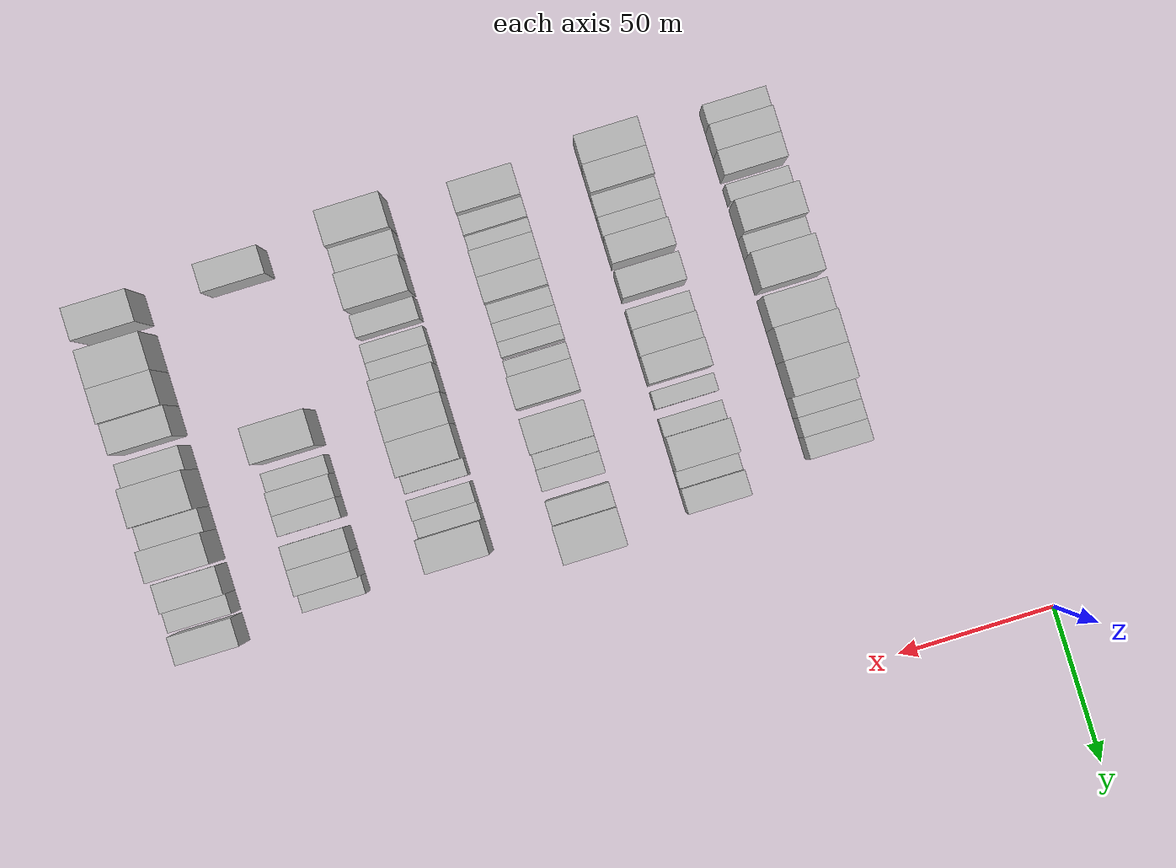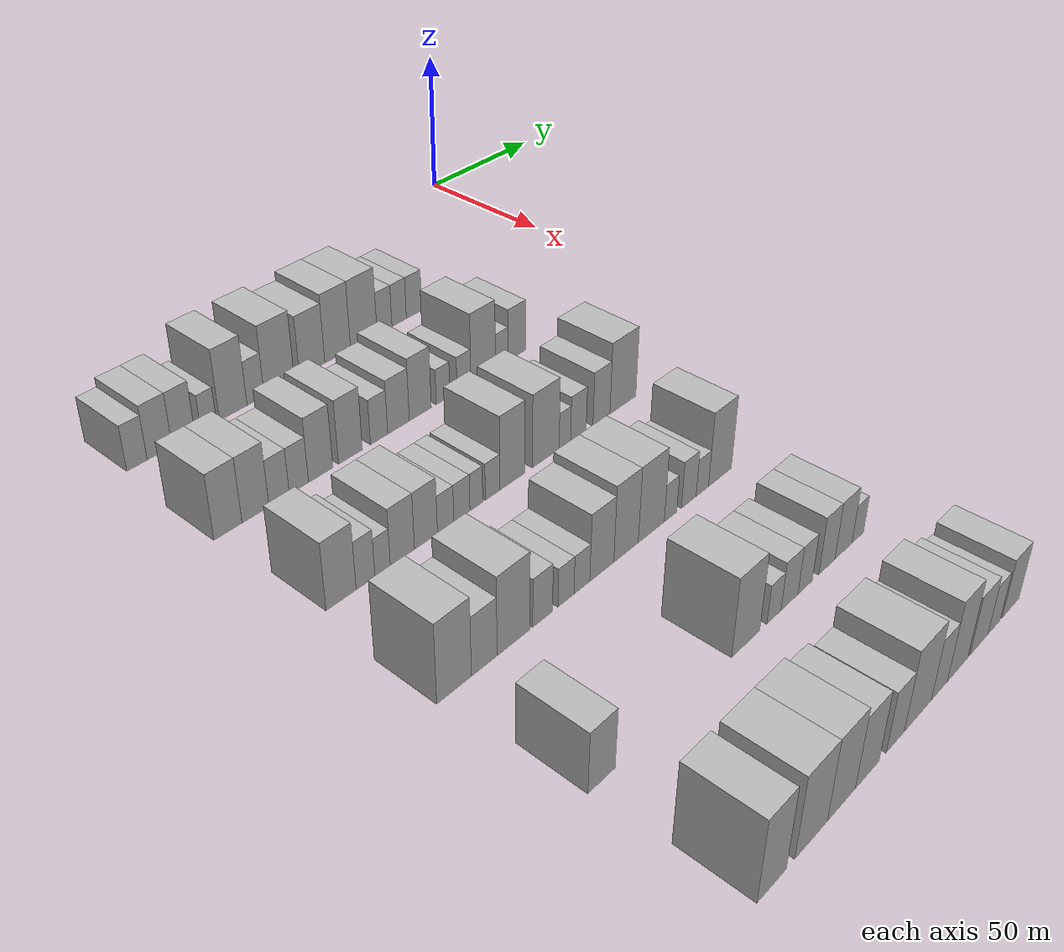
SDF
<sdf version="1.6">
 <world name="default">
  <model name="building_51">
   <static>1</static>
   <pose>50.0000 -174.0268 0 0.000000 0.000000 0.000000</pose>
   <link name="link">
    <pose>0 0 7.50 0 0 0</pose>
    <collision name="collision"><geometry><box><size>20.0000 6.5966 15.0000</size></box></geometry></collision>
    <visual name="visual">
     <cast_shadows>0</cast_shadows>
     <geometry><box><size>20.0000 6.5966 15.0000</size></box></geometry>
     <material>
      <script>
       <uri>model://HANNAS_wall/materials/scripts</uri>
       <uri>model://HANNAS_wall/materials/textures</uri>
       <name>vrc/HANNAS_wall</name>
      </script>
     </material>
    </visual>
   </link>
  </model>
  <model name="building_52">
   <static>1</static>
   <pose>50.0000 -166.6360 0 0.000000 0.000000 0.000000</pose>
   <link name="link">
    <pose>0 0 9.00 0 0 0</pose>
    <collision name="collision"><geometry><box><size>20.0000 8.1851 18.0000</size></box></geometry></collision>
    <visual name="visual">
     <cast_shadows>0</cast_shadows>
     <geometry><box><size>20.0000 8.1851 18.0000</size></box></geometry>
     <material>
      <script>
       <uri>model://HANNAS_wall/materials/scripts</uri>
       <uri>model://HANNAS_wall/materials/textures</uri>
       <name>vrc/HANNAS_wall</name>
      </script>
     </material>
    </visual>
   </link>
  </model>
  <model name="building_53">
   <static>1</static>
   <pose>50.0000 -158.6678 0 0.000000 0.000000 0.000000</pose>
   <link name="link">
    <pose>0 0 9.00 0 0 0</pose>
    <collision name="collision"><geometry><box><size>20.0000 7.7513 18.0000</size></box></geometry></collision>
    <visual name="visual">
     <cast_shadows>0</cast_shadows>
     <geometry><box><size>20.0000 7.7513 18.0000</size></box></geometry>
     <material>
      <script>
       <uri>model://HANNAS_wall/materials/scripts</uri>
       <uri>model://HANNAS_wall/materials/textures</uri>
       <name>vrc/HANNAS_wall</name>
      </script>
     </material>
    </visual>
   </link>
  </model>
  <model name="building_54">
   <static>1</static>
   <pose>50.0000 -150.0392 0 0.000000 0.000000 0.000000</pose>
   <link name="link">
    <pose>0 0 6.00 0 0 0</pose>
    <collision name="collision"><geometry><box><size>20.0000 5.5058 12.0000</size></box></geometry></collision>
    <visual name="visual">
     <cast_shadows>0</cast_shadows>
     <geometry><box><size>20.0000 5.5058 12.0000</size></box></geometry>
     <material>
      <script>
       <uri>model://HANNAS_wall/materials/scripts</uri>
       <uri>model://HANNAS_wall/materials/textures</uri>
       <name>vrc/HANNAS_wall</name>
      </script>
     </material>
    </visual>
   </link>
  </model>
  <model name="building_55">
   <static>1</static>
   <pose>50.0000 -141.3399 0 0.000000 0.000000 0.000000</pose>
   <link name="link">
    <pose>0 0 12.00 0 0 0</pose>
    <collision name="collision"><geometry><box><size>20.0000 9.8928 24.0000</size></box></geometry></collision>
    <visual name="visual">
     <cast_shadows>0</cast_shadows>
     <geometry><box><size>20.0000 9.8928 24.0000</size></box></geometry>
     <material>
      <script>
       <uri>model://HANNAS_wall/materials/scripts</uri>
       <uri>model://HANNAS_wall/materials/textures</uri>
       <name>vrc/HANNAS_wall</name>
      </script>
     </material>
    </visual>
   </link>
  </model>
  <model name="building_56">
   <static>1</static>
   <pose>50.0000 -133.2379 0 0.000000 0.000000 0.000000</pose>
   <link name="link">
    <pose>0 0 7.50 0 0 0</pose>
    <collision name="collision"><geometry><box><size>20.0000 6.3112 15.0000</size></box></geometry></collision>
    <visual name="visual">
     <cast_shadows>0</cast_shadows>
     <geometry><box><size>20.0000 6.3112 15.0000</size></box></geometry>
     <material>
      <script>
       <uri>model://HANNAS_wall/materials/scripts</uri>
       <uri>model://HANNAS_wall/materials/textures</uri>
       <name>vrc/HANNAS_wall</name>
      </script>
     </material>
    </visual>
   </link>
  </model>
  <model name="building_57">
   <static>1</static>
   <pose>50.0000 -124.4303 0 0.000000 0.000000 0.000000</pose>
   <link name="link">
    <pose>0 0 12.00 0 0 0</pose>
    <collision name="collision"><geometry><box><size>20.0000 11.3040 24.0000</size></box></geometry></collision>
    <visual name="visual">
     <cast_shadows>0</cast_shadows>
     <geometry><box><size>20.0000 11.3040 24.0000</size></box></geometry>
     <material>
      <script>
       <uri>model://HANNAS_wall/materials/scripts</uri>
       <uri>model://HANNAS_wall/materials/textures</uri>
       <name>vrc/HANNAS_wall</name>
      </script>
     </material>
    </visual>
   </link>
  </model>
  <model name="building_58">
   <static>1</static>
   <pose>50.0000 -111.8070 0 0.000000 0.000000 0.000000</pose>
   <link name="link">
    <pose>0 0 10.50 0 0 0</pose>
    <collision name="collision"><geometry><box><size>20.0000 9.9426 21.0000</size></box></geometry></collision>
    <visual name="visual">
     <cast_shadows>0</cast_shadows>
     <geometry><box><size>20.0000 9.9426 21.0000</size></box></geometry>
     <material>
      <script>
       <uri>model://HANNAS_wall/materials/scripts</uri>
       <uri>model://HANNAS_wall/materials/textures</uri>
       <name>vrc/HANNAS_wall</name>
      </script>
     </material>
    </visual>
   </link>
  </model>
  <model name="building_59">
   <static>1</static>
   <pose>50.0000 -101.6585 0 0.000000 0.000000 0.000000</pose>
   <link name="link">
    <pose>0 0 12.00 0 0 0</pose>
    <collision name="collision"><geometry><box><size>20.0000 10.3544 24.0000</size></box></geometry></collision>
    <visual name="visual">
     <cast_shadows>0</cast_shadows>
     <geometry><box><size>20.0000 10.3544 24.0000</size></box></geometry>
     <material>
      <script>
       <uri>model://HANNAS_wall/materials/scripts</uri>
       <uri>model://HANNAS_wall/materials/textures</uri>
       <name>vrc/HANNAS_wall</name>
      </script>
     </material>
    </visual>
   </link>
  </model>
  <model name="building_60">
   <static>1</static>
   <pose>50.0000 -90.9523 0 0.000000 0.000000 0.000000</pose>
   <link name="link">
    <pose>0 0 12.00 0 0 0</pose>
    <collision name="collision"><geometry><box><size>20.0000 11.0579 24.0000</size></box></geometry></collision>
    <visual name="visual">
     <cast_shadows>0</cast_shadows>
     <geometry><box><size>20.0000 11.0579 24.0000</size></box></geometry>
     <material>
      <script>
       <uri>model://HANNAS_wall/materials/scripts</uri>
       <uri>model://HANNAS_wall/materials/textures</uri>
       <name>vrc/HANNAS_wall</name>
      </script>
     </material>
    </visual>
   </link>
  </model>
  <model name="building_61">
   <static>1</static>
   <pose>50.0000 -82.2607 0 0.000000 0.000000 0.000000</pose>
   <link name="link">
    <pose>0 0 7.50 0 0 0</pose>
    <collision name="collision"><geometry><box><size>20.0000 6.3254 15.0000</size></box></geometry></collision>
    <visual name="visual">
     <cast_shadows>0</cast_shadows>
     <geometry><box><size>20.0000 6.3254 15.0000</size></box></geometry>
     <material>
      <script>
       <uri>model://HANNAS_wall/materials/scripts</uri>
       <uri>model://HANNAS_wall/materials/textures</uri>
       <name>vrc/HANNAS_wall</name>
      </script>
     </material>
    </visual>
   </link>
  </model>
  <model name="building_62">
   <static>1</static>
   <pose>50.0000 -75.9656 0 0.000000 0.000000 0.000000</pose>
   <link name="link">
    <pose>0 0 7.50 0 0 0</pose>
    <collision name="collision"><geometry><box><size>20.0000 6.2648 15.0000</size></box></geometry></collision>
    <visual name="visual">
     <cast_shadows>0</cast_shadows>
     <geometry><box><size>20.0000 6.2648 15.0000</size></box></geometry>
     <material>
      <script>
       <uri>model://HANNAS_wall/materials/scripts</uri>
       <uri>model://HANNAS_wall/materials/textures</uri>
       <name>vrc/HANNAS_wall</name>
      </script>
     </material>
    </visual>
   </link>
  </model>
  <model name="building_63">
   <static>1</static>
   <pose>50.0000 -69.4381 0 0.000000 0.000000 0.000000</pose>
   <link name="link">
    <pose>0 0 7.50 0 0 0</pose>
    <collision name="collision"><geometry><box><size>20.0000 6.7902 15.0000</size></box></geometry></collision>
    <visual name="visual">
     <cast_shadows>0</cast_shadows>
     <geometry><box><size>20.0000 6.7902 15.0000</size></box></geometry>
     <material>
      <script>
       <uri>model://HANNAS_wall/materials/scripts</uri>
       <uri>model://HANNAS_wall/materials/textures</uri>
       <name>vrc/HANNAS_wall</name>
      </script>
     </material>
    </visual>
   </link>
  </model>
  <model name="building_185">
   <static>1</static>
   <pose>90.0000 -174.4848 0 0.000000 0.000000 0.000000</pose>
   <link name="link">
    <pose>0 0 10.50 0 0 0</pose>
    <collision name="collision"><geometry><box><size>20.0000 8.9764 21.0000</size></box></geometry></collision>
    <visual name="visual">
     <cast_shadows>0</cast_shadows>
     <geometry><box><size>20.0000 8.9764 21.0000</size></box></geometry>
     <material>
      <script>
       <uri>model://HANNAS_wall/materials/scripts</uri>
       <uri>model://HANNAS_wall/materials/textures</uri>
       <name>vrc/HANNAS_wall</name>
      </script>
     </material>
    </visual>
   </link>
  </model>
  <model name="building_186">
   <static>1</static>
   <pose>90.0000 -165.5880 0 0.000000 0.000000 0.000000</pose>
   <link name="link">
    <pose>0 0 10.50 0 0 0</pose>
    <collision name="collision"><geometry><box><size>20.0000 8.8172 21.0000</size></box></geometry></collision>
    <visual name="visual">
     <cast_shadows>0</cast_shadows>
     <geometry><box><size>20.0000 8.8172 21.0000</size></box></geometry>
     <material>
      <script>
       <uri>model://HANNAS_wall/materials/scripts</uri>
       <uri>model://HANNAS_wall/materials/textures</uri>
       <name>vrc/HANNAS_wall</name>
      </script>
     </material>
    </visual>
   </link>
  </model>
  <model name="building_187">
   <static>1</static>
   <pose>90.0000 -157.7479 0 0.000000 0.000000 0.000000</pose>
   <link name="link">
    <pose>0 0 7.50 0 0 0</pose>
    <collision name="collision"><geometry><box><size>20.0000 6.8631 15.0000</size></box></geometry></collision>
    <visual name="visual">
     <cast_shadows>0</cast_shadows>
     <geometry><box><size>20.0000 6.8631 15.0000</size></box></geometry>
     <material>
      <script>
       <uri>model://HANNAS_wall/materials/scripts</uri>
       <uri>model://HANNAS_wall/materials/textures</uri>
       <name>vrc/HANNAS_wall</name>
      </script>
     </material>
    </visual>
   </link>
  </model>
  <model name="building_188">
   <static>1</static>
   <pose>90.0000 -151.0157 0 0.000000 0.000000 0.000000</pose>
   <link name="link">
    <pose>0 0 7.50 0 0 0</pose>
    <collision name="collision"><geometry><box><size>20.0000 6.6013 15.0000</size></box></geometry></collision>
    <visual name="visual">
     <cast_shadows>0</cast_shadows>
     <geometry><box><size>20.0000 6.6013 15.0000</size></box></geometry>
     <material>
      <script>
       <uri>model://HANNAS_wall/materials/scripts</uri>
       <uri>model://HANNAS_wall/materials/textures</uri>
       <name>vrc/HANNAS_wall</name>
      </script>
     </material>
    </visual>
   </link>
  </model>
  <model name="building_189">
   <static>1</static>
   <pose>90.0000 -143.4011 0 0.000000 0.000000 0.000000</pose>
   <link name="link">
    <pose>0 0 10.50 0 0 0</pose>
    <collision name="collision"><geometry><box><size>20.0000 8.6280 21.0000</size></box></geometry></collision>
    <visual name="visual">
     <cast_shadows>0</cast_shadows>
     <geometry><box><size>20.0000 8.6280 21.0000</size></box></geometry>
     <material>
      <script>
       <uri>model://HANNAS_wall/materials/scripts</uri>
       <uri>model://HANNAS_wall/materials/textures</uri>
       <name>vrc/HANNAS_wall</name>
      </script>
     </material>
    </visual>
   </link>
  </model>
  <model name="building_190">
   <static>1</static>
   <pose>90.0000 -132.7059 0 0.000000 0.000000 0.000000</pose>
   <link name="link">
    <pose>0 0 10.50 0 0 0</pose>
    <collision name="collision"><geometry><box><size>20.0000 8.7625 21.0000</size></box></geometry></collision>
    <visual name="visual">
     <cast_shadows>0</cast_shadows>
     <geometry><box><size>20.0000 8.7625 21.0000</size></box></geometry>
     <material>
      <script>
       <uri>model://HANNAS_wall/materials/scripts</uri>
       <uri>model://HANNAS_wall/materials/textures</uri>
       <name>vrc/HANNAS_wall</name>
      </script>
     </material>
    </visual>
   </link>
  </model>
  <model name="building_191">
   <static>1</static>
   <pose>90.0000 -122.0550 0 0.000000 0.000000 0.000000</pose>
   <link name="link">
    <pose>0 0 7.50 0 0 0</pose>
    <collision name="collision"><geometry><box><size>20.0000 6.5394 15.0000</size></box></geometry></collision>
    <visual name="visual">
     <cast_shadows>0</cast_shadows>
     <geometry><box><size>20.0000 6.5394 15.0000</size></box></geometry>
     <material>
      <script>
       <uri>model://HANNAS_wall/materials/scripts</uri>
       <uri>model://HANNAS_wall/materials/textures</uri>
       <name>vrc/HANNAS_wall</name>
      </script>
     </material>
    </visual>
   </link>
  </model>
  <model name="building_192">
   <static>1</static>
   <pose>90.0000 -114.5827 0 0.000000 0.000000 0.000000</pose>
   <link name="link">
    <pose>0 0 9.00 0 0 0</pose>
    <collision name="collision"><geometry><box><size>20.0000 8.4051 18.0000</size></box></geometry></collision>
    <visual name="visual">
     <cast_shadows>0</cast_shadows>
     <geometry><box><size>20.0000 8.4051 18.0000</size></box></geometry>
     <material>
      <script>
       <uri>model://HANNAS_wall/materials/scripts</uri>
       <uri>model://HANNAS_wall/materials/textures</uri>
       <name>vrc/HANNAS_wall</name>
      </script>
     </material>
    </visual>
   </link>
  </model>
  <model name="building_193">
   <static>1</static>
   <pose>90.0000 -106.0100 0 0.000000 0.000000 0.000000</pose>
   <link name="link">
    <pose>0 0 10.50 0 0 0</pose>
    <collision name="collision"><geometry><box><size>20.0000 8.7403 21.0000</size></box></geometry></collision>
    <visual name="visual">
     <cast_shadows>0</cast_shadows>
     <geometry><box><size>20.0000 8.7403 21.0000</size></box></geometry>
     <material>
      <script>
       <uri>model://HANNAS_wall/materials/scripts</uri>
       <uri>model://HANNAS_wall/materials/textures</uri>
       <name>vrc/HANNAS_wall</name>
      </script>
     </material>
    </visual>
   </link>
  </model>
  <model name="building_194">
   <static>1</static>
   <pose>90.0000 -96.8381 0 0.000000 0.000000 0.000000</pose>
   <link name="link">
    <pose>0 0 6.00 0 0 0</pose>
    <collision name="collision"><geometry><box><size>20.0000 5.6037 12.0000</size></box></geometry></collision>
    <visual name="visual">
     <cast_shadows>0</cast_shadows>
     <geometry><box><size>20.0000 5.6037 12.0000</size></box></geometry>
     <material>
      <script>
       <uri>model://HANNAS_wall/materials/scripts</uri>
       <uri>model://HANNAS_wall/materials/textures</uri>
       <name>vrc/HANNAS_wall</name>
      </script>
     </material>
    </visual>
   </link>
  </model>
  <model name="building_195">
   <static>1</static>
   <pose>90.0000 -88.1111 0 0.000000 0.000000 0.000000</pose>
   <link name="link">
    <pose>0 0 6.00 0 0 0</pose>
    <collision name="collision"><geometry><box><size>20.0000 5.8502 12.0000</size></box></geometry></collision>
    <visual name="visual">
     <cast_shadows>0</cast_shadows>
     <geometry><box><size>20.0000 5.8502 12.0000</size></box></geometry>
     <material>
      <script>
       <uri>model://HANNAS_wall/materials/scripts</uri>
       <uri>model://HANNAS_wall/materials/textures</uri>
       <name>vrc/HANNAS_wall</name>
      </script>
     </material>
    </visual>
   </link>
  </model>
  <model name="building_196">
   <static>1</static>
   <pose>90.0000 -79.8770 0 0.000000 0.000000 0.000000</pose>
   <link name="link">
    <pose>0 0 12.00 0 0 0</pose>
    <collision name="collision"><geometry><box><size>20.0000 10.6181 24.0000</size></box></geometry></collision>
    <visual name="visual">
     <cast_shadows>0</cast_shadows>
     <geometry><box><size>20.0000 10.6181 24.0000</size></box></geometry>
     <material>
      <script>
       <uri>model://HANNAS_wall/materials/scripts</uri>
       <uri>model://HANNAS_wall/materials/textures</uri>
       <name>vrc/HANNAS_wall</name>
      </script>
     </material>
    </visual>
   </link>
  </model>
  <model name="building_197">
   <static>1</static>
   <pose>90.0000 -71.7715 0 0.000000 0.000000 0.000000</pose>
   <link name="link">
    <pose>0 0 6.00 0 0 0</pose>
    <collision name="collision"><geometry><box><size>20.0000 5.5928 12.0000</size></box></geometry></collision>
    <visual name="visual">
     <cast_shadows>0</cast_shadows>
     <geometry><box><size>20.0000 5.5928 12.0000</size></box></geometry>
     <material>
      <script>
       <uri>model://HANNAS_wall/materials/scripts</uri>
       <uri>model://HANNAS_wall/materials/textures</uri>
       <name>vrc/HANNAS_wall</name>
      </script>
     </material>
    </visual>
   </link>
  </model>
  <model name="building_198">
   <static>1</static>
   <pose>90.0000 -65.0583 0 0.000000 0.000000 0.000000</pose>
   <link name="link">
    <pose>0 0 9.00 0 0 0</pose>
    <collision name="collision"><geometry><box><size>20.0000 7.8337 18.0000</size></box></geometry></collision>
    <visual name="visual">
     <cast_shadows>0</cast_shadows>
     <geometry><box><size>20.0000 7.8337 18.0000</size></box></geometry>
     <material>
      <script>
       <uri>model://HANNAS_wall/materials/scripts</uri>
       <uri>model://HANNAS_wall/materials/textures</uri>
       <name>vrc/HANNAS_wall</name>
      </script>
     </material>
    </visual>
   </link>
  </model>
  <model name="building_327">
   <static>1</static>
   <pose>130.0000 -171.9253 0 0.000000 0.000000 0.000000</pose>
   <link name="link">
    <pose>0 0 10.50 0 0 0</pose>
    <collision name="collision"><geometry><box><size>20.0000 9.6498 21.0000</size></box></geometry></collision>
    <visual name="visual">
     <cast_shadows>0</cast_shadows>
     <geometry><box><size>20.0000 9.6498 21.0000</size></box></geometry>
     <material>
      <script>
       <uri>model://HANNAS_wall/materials/scripts</uri>
       <uri>model://HANNAS_wall/materials/textures</uri>
       <name>vrc/HANNAS_wall</name>
      </script>
     </material>
    </visual>
   </link>
  </model>
  <model name="building_328">
   <static>1</static>
   <pose>130.0000 -164.0141 0 0.000000 0.000000 0.000000</pose>
   <link name="link">
    <pose>0 0 7.50 0 0 0</pose>
    <collision name="collision"><geometry><box><size>20.0000 6.1725 15.0000</size></box></geometry></collision>
    <visual name="visual">
     <cast_shadows>0</cast_shadows>
     <geometry><box><size>20.0000 6.1725 15.0000</size></box></geometry>
     <material>
      <script>
       <uri>model://HANNAS_wall/materials/scripts</uri>
       <uri>model://HANNAS_wall/materials/textures</uri>
       <name>vrc/HANNAS_wall</name>
      </script>
     </material>
    </visual>
   </link>
  </model>
  <model name="building_329">
   <static>1</static>
   <pose>130.0000 -158.3449 0 0.000000 0.000000 0.000000</pose>
   <link name="link">
    <pose>0 0 6.00 0 0 0</pose>
    <collision name="collision"><geometry><box><size>20.0000 5.1658 12.0000</size></box></geometry></collision>
    <visual name="visual">
     <cast_shadows>0</cast_shadows>
     <geometry><box><size>20.0000 5.1658 12.0000</size></box></geometry>
     <material>
      <script>
       <uri>model://HANNAS_wall/materials/scripts</uri>
       <uri>model://HANNAS_wall/materials/textures</uri>
       <name>vrc/HANNAS_wall</name>
      </script>
     </material>
    </visual>
   </link>
  </model>
  <model name="building_330">
   <static>1</static>
   <pose>130.0000 -151.6082 0 0.000000 0.000000 0.000000</pose>
   <link name="link">
    <pose>0 0 9.00 0 0 0</pose>
    <collision name="collision"><geometry><box><size>20.0000 8.3077 18.0000</size></box></geometry></collision>
    <visual name="visual">
     <cast_shadows>0</cast_shadows>
     <geometry><box><size>20.0000 8.3077 18.0000</size></box></geometry>
     <material>
      <script>
       <uri>model://HANNAS_wall/materials/scripts</uri>
       <uri>model://HANNAS_wall/materials/textures</uri>
       <name>vrc/HANNAS_wall</name>
      </script>
     </material>
    </visual>
   </link>
  </model>
  <model name="building_331">
   <static>1</static>
   <pose>130.0000 -143.3900 0 0.000000 0.000000 0.000000</pose>
   <link name="link">
    <pose>0 0 9.00 0 0 0</pose>
    <collision name="collision"><geometry><box><size>20.0000 8.1287 18.0000</size></box></geometry></collision>
    <visual name="visual">
     <cast_shadows>0</cast_shadows>
     <geometry><box><size>20.0000 8.1287 18.0000</size></box></geometry>
     <material>
      <script>
       <uri>model://HANNAS_wall/materials/scripts</uri>
       <uri>model://HANNAS_wall/materials/textures</uri>
       <name>vrc/HANNAS_wall</name>
      </script>
     </material>
    </visual>
   </link>
  </model>
  <model name="building_332">
   <static>1</static>
   <pose>130.0000 -136.3503 0 0.000000 0.000000 0.000000</pose>
   <link name="link">
    <pose>0 0 6.00 0 0 0</pose>
    <collision name="collision"><geometry><box><size>20.0000 5.9507 12.0000</size></box></geometry></collision>
    <visual name="visual">
     <cast_shadows>0</cast_shadows>
     <geometry><box><size>20.0000 5.9507 12.0000</size></box></geometry>
     <material>
      <script>
       <uri>model://HANNAS_wall/materials/scripts</uri>
       <uri>model://HANNAS_wall/materials/textures</uri>
       <name>vrc/HANNAS_wall</name>
      </script>
     </material>
    </visual>
   </link>
  </model>
  <model name="building_333">
   <static>1</static>
   <pose>130.0000 -130.4018 0 0.000000 0.000000 0.000000</pose>
   <link name="link">
    <pose>0 0 6.00 0 0 0</pose>
    <collision name="collision"><geometry><box><size>20.0000 5.9463 12.0000</size></box></geometry></collision>
    <visual name="visual">
     <cast_shadows>0</cast_shadows>
     <geometry><box><size>20.0000 5.9463 12.0000</size></box></geometry>
     <material>
      <script>
       <uri>model://HANNAS_wall/materials/scripts</uri>
       <uri>model://HANNAS_wall/materials/textures</uri>
       <name>vrc/HANNAS_wall</name>
      </script>
     </material>
    </visual>
   </link>
  </model>
  <model name="building_334">
   <static>1</static>
   <pose>130.0000 -125.0184 0 0.000000 0.000000 0.000000</pose>
   <link name="link">
    <pose>0 0 6.00 0 0 0</pose>
    <collision name="collision"><geometry><box><size>20.0000 4.8206 12.0000</size></box></geometry></collision>
    <visual name="visual">
     <cast_shadows>0</cast_shadows>
     <geometry><box><size>20.0000 4.8206 12.0000</size></box></geometry>
     <material>
      <script>
       <uri>model://HANNAS_wall/materials/scripts</uri>
       <uri>model://HANNAS_wall/materials/textures</uri>
       <name>vrc/HANNAS_wall</name>
      </script>
     </material>
    </visual>
   </link>
  </model>
  <model name="building_335">
   <static>1</static>
   <pose>130.0000 -118.7872 0 0.000000 0.000000 0.000000</pose>
   <link name="link">
    <pose>0 0 6.00 0 0 0</pose>
    <collision name="collision"><geometry><box><size>20.0000 5.6419 12.0000</size></box></geometry></collision>
    <visual name="visual">
     <cast_shadows>0</cast_shadows>
     <geometry><box><size>20.0000 5.6419 12.0000</size></box></geometry>
     <material>
      <script>
       <uri>model://HANNAS_wall/materials/scripts</uri>
       <uri>model://HANNAS_wall/materials/textures</uri>
       <name>vrc/HANNAS_wall</name>
      </script>
     </material>
    </visual>
   </link>
  </model>
  <model name="building_336">
   <static>1</static>
   <pose>130.0000 -111.0257 0 0.000000 0.000000 0.000000</pose>
   <link name="link">
    <pose>0 0 12.00 0 0 0</pose>
    <collision name="collision"><geometry><box><size>20.0000 9.8811 24.0000</size></box></geometry></collision>
    <visual name="visual">
     <cast_shadows>0</cast_shadows>
     <geometry><box><size>20.0000 9.8811 24.0000</size></box></geometry>
     <material>
      <script>
       <uri>model://HANNAS_wall/materials/scripts</uri>
       <uri>model://HANNAS_wall/materials/textures</uri>
       <name>vrc/HANNAS_wall</name>
      </script>
     </material>
    </visual>
   </link>
  </model>
  <model name="building_337">
   <static>1</static>
   <pose>130.0000 -97.5477 0 0.000000 0.000000 0.000000</pose>
   <link name="link">
    <pose>0 0 12.00 0 0 0</pose>
    <collision name="collision"><geometry><box><size>20.0000 11.0749 24.0000</size></box></geometry></collision>
    <visual name="visual">
     <cast_shadows>0</cast_shadows>
     <geometry><box><size>20.0000 11.0749 24.0000</size></box></geometry>
     <material>
      <script>
       <uri>model://HANNAS_wall/materials/scripts</uri>
       <uri>model://HANNAS_wall/materials/textures</uri>
       <name>vrc/HANNAS_wall</name>
      </script>
     </material>
    </visual>
   </link>
  </model>
  <model name="building_338">
   <static>1</static>
   <pose>130.0000 -89.5737 0 0.000000 0.000000 0.000000</pose>
   <link name="link">
    <pose>0 0 6.00 0 0 0</pose>
    <collision name="collision"><geometry><box><size>20.0000 4.8730 12.0000</size></box></geometry></collision>
    <visual name="visual">
     <cast_shadows>0</cast_shadows>
     <geometry><box><size>20.0000 4.8730 12.0000</size></box></geometry>
     <material>
      <script>
       <uri>model://HANNAS_wall/materials/scripts</uri>
       <uri>model://HANNAS_wall/materials/textures</uri>
       <name>vrc/HANNAS_wall</name>
      </script>
     </material>
    </visual>
   </link>
  </model>
  <model name="building_339">
   <static>1</static>
   <pose>130.0000 -83.7594 0 0.000000 0.000000 0.000000</pose>
   <link name="link">
    <pose>0 0 7.50 0 0 0</pose>
    <collision name="collision"><geometry><box><size>20.0000 6.7557 15.0000</size></box></geometry></collision>
    <visual name="visual">
     <cast_shadows>0</cast_shadows>
     <geometry><box><size>20.0000 6.7557 15.0000</size></box></geometry>
     <material>
      <script>
       <uri>model://HANNAS_wall/materials/scripts</uri>
       <uri>model://HANNAS_wall/materials/textures</uri>
       <name>vrc/HANNAS_wall</name>
      </script>
     </material>
    </visual>
   </link>
  </model>
  <model name="building_340">
   <static>1</static>
   <pose>130.0000 -73.5956 0 0.000000 0.000000 0.000000</pose>
   <link name="link">
    <pose>0 0 9.00 0 0 0</pose>
    <collision name="collision"><geometry><box><size>20.0000 7.5719 18.0000</size></box></geometry></collision>
    <visual name="visual">
     <cast_shadows>0</cast_shadows>
     <geometry><box><size>20.0000 7.5719 18.0000</size></box></geometry>
     <material>
      <script>
       <uri>model://HANNAS_wall/materials/scripts</uri>
       <uri>model://HANNAS_wall/materials/textures</uri>
       <name>vrc/HANNAS_wall</name>
      </script>
     </material>
    </visual>
   </link>
  </model>
  <model name="building_341">
   <static>1</static>
   <pose>130.0000 -63.8634 0 0.000000 0.000000 0.000000</pose>
   <link name="link">
    <pose>0 0 12.00 0 0 0</pose>
    <collision name="collision"><geometry><box><size>20.0000 11.8925 24.0000</size></box></geometry></collision>
    <visual name="visual">
     <cast_shadows>0</cast_shadows>
     <geometry><box><size>20.0000 11.8925 24.0000</size></box></geometry>
     <material>
      <script>
       <uri>model://HANNAS_wall/materials/scripts</uri>
       <uri>model://HANNAS_wall/materials/textures</uri>
       <name>vrc/HANNAS_wall</name>
      </script>
     </material>
    </visual>
   </link>
  </model>
  <model name="building_465">
   <static>1</static>
   <pose>170.0000 -174.2717 0 0.000000 0.000000 0.000000</pose>
   <link name="link">
    <pose>0 0 12.00 0 0 0</pose>
    <collision name="collision"><geometry><box><size>20.0000 11.0181 24.0000</size></box></geometry></collision>
    <visual name="visual">
     <cast_shadows>0</cast_shadows>
     <geometry><box><size>20.0000 11.0181 24.0000</size></box></geometry>
     <material>
      <script>
       <uri>model://HANNAS_wall/materials/scripts</uri>
       <uri>model://HANNAS_wall/materials/textures</uri>
       <name>vrc/HANNAS_wall</name>
      </script>
     </material>
    </visual>
   </link>
  </model>
  <model name="building_466">
   <static>1</static>
   <pose>170.0000 -164.5196 0 0.000000 0.000000 0.000000</pose>
   <link name="link">
    <pose>0 0 9.00 0 0 0</pose>
    <collision name="collision"><geometry><box><size>20.0000 8.4861 18.0000</size></box></geometry></collision>
    <visual name="visual">
     <cast_shadows>0</cast_shadows>
     <geometry><box><size>20.0000 8.4861 18.0000</size></box></geometry>
     <material>
      <script>
       <uri>model://HANNAS_wall/materials/scripts</uri>
       <uri>model://HANNAS_wall/materials/textures</uri>
       <name>vrc/HANNAS_wall</name>
      </script>
     </material>
    </visual>
   </link>
  </model>
  <model name="building_467">
   <static>1</static>
   <pose>170.0000 -154.6713 0 0.000000 0.000000 0.000000</pose>
   <link name="link">
    <pose>0 0 12.00 0 0 0</pose>
    <collision name="collision"><geometry><box><size>20.0000 11.2106 24.0000</size></box></geometry></collision>
    <visual name="visual">
     <cast_shadows>0</cast_shadows>
     <geometry><box><size>20.0000 11.2106 24.0000</size></box></geometry>
     <material>
      <script>
       <uri>model://HANNAS_wall/materials/scripts</uri>
       <uri>model://HANNAS_wall/materials/textures</uri>
       <name>vrc/HANNAS_wall</name>
      </script>
     </material>
    </visual>
   </link>
  </model>
  <model name="building_468">
   <static>1</static>
   <pose>170.0000 -144.5306 0 0.000000 0.000000 0.000000</pose>
   <link name="link">
    <pose>0 0 7.50 0 0 0</pose>
    <collision name="collision"><geometry><box><size>20.0000 7.0708 15.0000</size></box></geometry></collision>
    <visual name="visual">
     <cast_shadows>0</cast_shadows>
     <geometry><box><size>20.0000 7.0708 15.0000</size></box></geometry>
     <material>
      <script>
       <uri>model://HANNAS_wall/materials/scripts</uri>
       <uri>model://HANNAS_wall/materials/textures</uri>
       <name>vrc/HANNAS_wall</name>
      </script>
     </material>
    </visual>
   </link>
  </model>
  <model name="building_469">
   <static>1</static>
   <pose>170.0000 -136.0485 0 0.000000 0.000000 0.000000</pose>
   <link name="link">
    <pose>0 0 6.00 0 0 0</pose>
    <collision name="collision"><geometry><box><size>20.0000 5.8933 12.0000</size></box></geometry></collision>
    <visual name="visual">
     <cast_shadows>0</cast_shadows>
     <geometry><box><size>20.0000 5.8933 12.0000</size></box></geometry>
     <material>
      <script>
       <uri>model://HANNAS_wall/materials/scripts</uri>
       <uri>model://HANNAS_wall/materials/textures</uri>
       <name>vrc/HANNAS_wall</name>
      </script>
     </material>
    </visual>
   </link>
  </model>
  <model name="building_470">
   <static>1</static>
   <pose>170.0000 -130.1300 0 0.000000 0.000000 0.000000</pose>
   <link name="link">
    <pose>0 0 6.00 0 0 0</pose>
    <collision name="collision"><geometry><box><size>20.0000 5.9436 12.0000</size></box></geometry></collision>
    <visual name="visual">
     <cast_shadows>0</cast_shadows>
     <geometry><box><size>20.0000 5.9436 12.0000</size></box></geometry>
     <material>
      <script>
       <uri>model://HANNAS_wall/materials/scripts</uri>
       <uri>model://HANNAS_wall/materials/textures</uri>
       <name>vrc/HANNAS_wall</name>
      </script>
     </material>
    </visual>
   </link>
  </model>
  <model name="building_471">
   <static>1</static>
   <pose>170.0000 -122.5124 0 0.000000 0.000000 0.000000</pose>
   <link name="link">
    <pose>0 0 10.50 0 0 0</pose>
    <collision name="collision"><geometry><box><size>20.0000 9.2916 21.0000</size></box></geometry></collision>
    <visual name="visual">
     <cast_shadows>0</cast_shadows>
     <geometry><box><size>20.0000 9.2916 21.0000</size></box></geometry>
     <material>
      <script>
       <uri>model://HANNAS_wall/materials/scripts</uri>
       <uri>model://HANNAS_wall/materials/textures</uri>
       <name>vrc/HANNAS_wall</name>
      </script>
     </material>
    </visual>
   </link>
  </model>
  <model name="building_472">
   <static>1</static>
   <pose>170.0000 -112.9611 0 0.000000 0.000000 0.000000</pose>
   <link name="link">
    <pose>0 0 12.00 0 0 0</pose>
    <collision name="collision"><geometry><box><size>20.0000 9.8110 24.0000</size></box></geometry></collision>
    <visual name="visual">
     <cast_shadows>0</cast_shadows>
     <geometry><box><size>20.0000 9.8110 24.0000</size></box></geometry>
     <material>
      <script>
       <uri>model://HANNAS_wall/materials/scripts</uri>
       <uri>model://HANNAS_wall/materials/textures</uri>
       <name>vrc/HANNAS_wall</name>
      </script>
     </material>
    </visual>
   </link>
  </model>
  <model name="building_473">
   <static>1</static>
   <pose>170.0000 -102.6452 0 0.000000 0.000000 0.000000</pose>
   <link name="link">
    <pose>0 0 12.00 0 0 0</pose>
    <collision name="collision"><geometry><box><size>20.0000 10.8208 24.0000</size></box></geometry></collision>
    <visual name="visual">
     <cast_shadows>0</cast_shadows>
     <geometry><box><size>20.0000 10.8208 24.0000</size></box></geometry>
     <material>
      <script>
       <uri>model://HANNAS_wall/materials/scripts</uri>
       <uri>model://HANNAS_wall/materials/textures</uri>
       <name>vrc/HANNAS_wall</name>
      </script>
     </material>
    </visual>
   </link>
  </model>
  <model name="building_474">
   <static>1</static>
   <pose>170.0000 -94.5392 0 0.000000 0.000000 0.000000</pose>
   <link name="link">
    <pose>0 0 6.00 0 0 0</pose>
    <collision name="collision"><geometry><box><size>20.0000 5.3914 12.0000</size></box></geometry></collision>
    <visual name="visual">
     <cast_shadows>0</cast_shadows>
     <geometry><box><size>20.0000 5.3914 12.0000</size></box></geometry>
     <material>
      <script>
       <uri>model://HANNAS_wall/materials/scripts</uri>
       <uri>model://HANNAS_wall/materials/textures</uri>
       <name>vrc/HANNAS_wall</name>
      </script>
     </material>
    </visual>
   </link>
  </model>
  <model name="building_475">
   <static>1</static>
   <pose>170.0000 -86.6243 0 0.000000 0.000000 0.000000</pose>
   <link name="link">
    <pose>0 0 7.50 0 0 0</pose>
    <collision name="collision"><geometry><box><size>20.0000 6.4383 15.0000</size></box></geometry></collision>
    <visual name="visual">
     <cast_shadows>0</cast_shadows>
     <geometry><box><size>20.0000 6.4383 15.0000</size></box></geometry>
     <material>
      <script>
       <uri>model://HANNAS_wall/materials/scripts</uri>
       <uri>model://HANNAS_wall/materials/textures</uri>
       <name>vrc/HANNAS_wall</name>
      </script>
     </material>
    </visual>
   </link>
  </model>
  <model name="building_476">
   <static>1</static>
   <pose>170.0000 -80.6304 0 0.000000 0.000000 0.000000</pose>
   <link name="link">
    <pose>0 0 6.00 0 0 0</pose>
    <collision name="collision"><geometry><box><size>20.0000 5.5496 12.0000</size></box></geometry></collision>
    <visual name="visual">
     <cast_shadows>0</cast_shadows>
     <geometry><box><size>20.0000 5.5496 12.0000</size></box></geometry>
     <material>
      <script>
       <uri>model://HANNAS_wall/materials/scripts</uri>
       <uri>model://HANNAS_wall/materials/textures</uri>
       <name>vrc/HANNAS_wall</name>
      </script>
     </material>
    </visual>
   </link>
  </model>
  <model name="building_477">
   <static>1</static>
   <pose>170.0000 -72.5996 0 0.000000 0.000000 0.000000</pose>
   <link name="link">
    <pose>0 0 12.00 0 0 0</pose>
    <collision name="collision"><geometry><box><size>20.0000 10.5119 24.0000</size></box></geometry></collision>
    <visual name="visual">
     <cast_shadows>0</cast_shadows>
     <geometry><box><size>20.0000 10.5119 24.0000</size></box></geometry>
     <material>
      <script>
       <uri>model://HANNAS_wall/materials/scripts</uri>
       <uri>model://HANNAS_wall/materials/textures</uri>
       <name>vrc/HANNAS_wall</name>
      </script>
     </material>
    </visual>
   </link>
  </model>
  <model name="building_599">
   <static>1</static>
   <pose>210.0000 -171.6715 0 0.000000 0.000000 0.000000</pose>
   <link name="link">
    <pose>0 0 9.00 0 0 0</pose>
    <collision name="collision"><geometry><box><size>20.0000 8.9116 18.0000</size></box></geometry></collision>
    <visual name="visual">
     <cast_shadows>0</cast_shadows>
     <geometry><box><size>20.0000 8.9116 18.0000</size></box></geometry>
     <material>
      <script>
       <uri>model://HANNAS_wall/materials/scripts</uri>
       <uri>model://HANNAS_wall/materials/textures</uri>
       <name>vrc/HANNAS_wall</name>
      </script>
     </material>
    </visual>
   </link>
  </model>
  <model name="building_600">
   <static>1</static>
   <pose>210.0000 -119.1776 0 0.000000 0.000000 0.000000</pose>
   <link name="link">
    <pose>0 0 12.00 0 0 0</pose>
    <collision name="collision"><geometry><box><size>20.0000 11.3588 24.0000</size></box></geometry></collision>
    <visual name="visual">
     <cast_shadows>0</cast_shadows>
     <geometry><box><size>20.0000 11.3588 24.0000</size></box></geometry>
     <material>
      <script>
       <uri>model://HANNAS_wall/materials/scripts</uri>
       <uri>model://HANNAS_wall/materials/textures</uri>
       <name>vrc/HANNAS_wall</name>
      </script>
     </material>
    </visual>
   </link>
  </model>
  <model name="building_601">
   <static>1</static>
   <pose>210.0000 -107.5181 0 0.000000 0.000000 0.000000</pose>
   <link name="link">
    <pose>0 0 6.00 0 0 0</pose>
    <collision name="collision"><geometry><box><size>20.0000 5.9603 12.0000</size></box></geometry></collision>
    <visual name="visual">
     <cast_shadows>0</cast_shadows>
     <geometry><box><size>20.0000 5.9603 12.0000</size></box></geometry>
     <material>
      <script>
       <uri>model://HANNAS_wall/materials/scripts</uri>
       <uri>model://HANNAS_wall/materials/textures</uri>
       <name>vrc/HANNAS_wall</name>
      </script>
     </material>
    </visual>
   </link>
  </model>
  <model name="building_602">
   <static>1</static>
   <pose>210.0000 -100.8459 0 0.000000 0.000000 0.000000</pose>
   <link name="link">
    <pose>0 0 7.50 0 0 0</pose>
    <collision name="collision"><geometry><box><size>20.0000 7.3840 15.0000</size></box></geometry></collision>
    <visual name="visual">
     <cast_shadows>0</cast_shadows>
     <geometry><box><size>20.0000 7.3840 15.0000</size></box></geometry>
     <material>
      <script>
       <uri>model://HANNAS_wall/materials/scripts</uri>
       <uri>model://HANNAS_wall/materials/textures</uri>
       <name>vrc/HANNAS_wall</name>
      </script>
     </material>
    </visual>
   </link>
  </model>
  <model name="building_603">
   <static>1</static>
   <pose>210.0000 -93.9663 0 0.000000 0.000000 0.000000</pose>
   <link name="link">
    <pose>0 0 7.50 0 0 0</pose>
    <collision name="collision"><geometry><box><size>20.0000 6.3753 15.0000</size></box></geometry></collision>
    <visual name="visual">
     <cast_shadows>0</cast_shadows>
     <geometry><box><size>20.0000 6.3753 15.0000</size></box></geometry>
     <material>
      <script>
       <uri>model://HANNAS_wall/materials/scripts</uri>
       <uri>model://HANNAS_wall/materials/textures</uri>
       <name>vrc/HANNAS_wall</name>
      </script>
     </material>
    </visual>
   </link>
  </model>
  <model name="building_604">
   <static>1</static>
   <pose>210.0000 -84.0818 0 0.000000 0.000000 0.000000</pose>
   <link name="link">
    <pose>0 0 9.00 0 0 0</pose>
    <collision name="collision"><geometry><box><size>20.0000 7.3937 18.0000</size></box></geometry></collision>
    <visual name="visual">
     <cast_shadows>0</cast_shadows>
     <geometry><box><size>20.0000 7.3937 18.0000</size></box></geometry>
     <material>
      <script>
       <uri>model://HANNAS_wall/materials/scripts</uri>
       <uri>model://HANNAS_wall/materials/textures</uri>
       <name>vrc/HANNAS_wall</name>
      </script>
     </material>
    </visual>
   </link>
  </model>
  <model name="building_605">
   <static>1</static>
   <pose>210.0000 -76.3158 0 0.000000 0.000000 0.000000</pose>
   <link name="link">
    <pose>0 0 9.00 0 0 0</pose>
    <collision name="collision"><geometry><box><size>20.0000 8.1383 18.0000</size></box></geometry></collision>
    <visual name="visual">
     <cast_shadows>0</cast_shadows>
     <geometry><box><size>20.0000 8.1383 18.0000</size></box></geometry>
     <material>
      <script>
       <uri>model://HANNAS_wall/materials/scripts</uri>
       <uri>model://HANNAS_wall/materials/textures</uri>
       <name>vrc/HANNAS_wall</name>
      </script>
     </material>
    </visual>
   </link>
  </model>
  <model name="building_606">
   <static>1</static>
   <pose>210.0000 -69.4526 0 0.000000 0.000000 0.000000</pose>
   <link name="link">
    <pose>0 0 6.00 0 0 0</pose>
    <collision name="collision"><geometry><box><size>20.0000 5.5881 12.0000</size></box></geometry></collision>
    <visual name="visual">
     <cast_shadows>0</cast_shadows>
     <geometry><box><size>20.0000 5.5881 12.0000</size></box></geometry>
     <material>
      <script>
       <uri>model://HANNAS_wall/materials/scripts</uri>
       <uri>model://HANNAS_wall/materials/textures</uri>
       <name>vrc/HANNAS_wall</name>
      </script>
     </material>
    </visual>
   </link>
  </model>
  <model name="building_730">
   <static>1</static>
   <pose>250.0000 -169.1543 0 0.000000 0.000000 0.000000</pose>
   <link name="link">
    <pose>0 0 12.00 0 0 0</pose>
    <collision name="collision"><geometry><box><size>20.0000 10.1345 24.0000</size></box></geometry></collision>
    <visual name="visual">
     <cast_shadows>0</cast_shadows>
     <geometry><box><size>20.0000 10.1345 24.0000</size></box></geometry>
     <material>
      <script>
       <uri>model://HANNAS_wall/materials/scripts</uri>
       <uri>model://HANNAS_wall/materials/textures</uri>
       <name>vrc/HANNAS_wall</name>
      </script>
     </material>
    </visual>
   </link>
  </model>
  <model name="building_731">
   <static>1</static>
   <pose>250.0000 -155.1279 0 0.000000 0.000000 0.000000</pose>
   <link name="link">
    <pose>0 0 12.00 0 0 0</pose>
    <collision name="collision"><geometry><box><size>20.0000 11.9183 24.0000</size></box></geometry></collision>
    <visual name="visual">
     <cast_shadows>0</cast_shadows>
     <geometry><box><size>20.0000 11.9183 24.0000</size></box></geometry>
     <material>
      <script>
       <uri>model://HANNAS_wall/materials/scripts</uri>
       <uri>model://HANNAS_wall/materials/textures</uri>
       <name>vrc/HANNAS_wall</name>
      </script>
     </material>
    </visual>
   </link>
  </model>
  <model name="building_732">
   <static>1</static>
   <pose>250.0000 -143.7551 0 0.000000 0.000000 0.000000</pose>
   <link name="link">
    <pose>0 0 12.00 0 0 0</pose>
    <collision name="collision"><geometry><box><size>20.0000 10.8272 24.0000</size></box></geometry></collision>
    <visual name="visual">
     <cast_shadows>0</cast_shadows>
     <geometry><box><size>20.0000 10.8272 24.0000</size></box></geometry>
     <material>
      <script>
       <uri>model://HANNAS_wall/materials/scripts</uri>
       <uri>model://HANNAS_wall/materials/textures</uri>
       <name>vrc/HANNAS_wall</name>
      </script>
     </material>
    </visual>
   </link>
  </model>
  <model name="building_733">
   <static>1</static>
   <pose>250.0000 -133.5495 0 0.000000 0.000000 0.000000</pose>
   <link name="link">
    <pose>0 0 10.50 0 0 0</pose>
    <collision name="collision"><geometry><box><size>20.0000 9.5840 21.0000</size></box></geometry></collision>
    <visual name="visual">
     <cast_shadows>0</cast_shadows>
     <geometry><box><size>20.0000 9.5840 21.0000</size></box></geometry>
     <material>
      <script>
       <uri>model://HANNAS_wall/materials/scripts</uri>
       <uri>model://HANNAS_wall/materials/textures</uri>
       <name>vrc/HANNAS_wall</name>
      </script>
     </material>
    </visual>
   </link>
  </model>
  <model name="building_734">
   <static>1</static>
   <pose>250.0000 -121.9395 0 0.000000 0.000000 0.000000</pose>
   <link name="link">
    <pose>0 0 9.00 0 0 0</pose>
    <collision name="collision"><geometry><box><size>20.0000 7.6360 18.0000</size></box></geometry></collision>
    <visual name="visual">
     <cast_shadows>0</cast_shadows>
     <geometry><box><size>20.0000 7.6360 18.0000</size></box></geometry>
     <material>
      <script>
       <uri>model://HANNAS_wall/materials/scripts</uri>
       <uri>model://HANNAS_wall/materials/textures</uri>
       <name>vrc/HANNAS_wall</name>
      </script>
     </material>
    </visual>
   </link>
  </model>
  <model name="building_735">
   <static>1</static>
   <pose>250.0000 -112.1228 0 0.000000 0.000000 0.000000</pose>
   <link name="link">
    <pose>0 0 12.00 0 0 0</pose>
    <collision name="collision"><geometry><box><size>20.0000 11.9975 24.0000</size></box></geometry></collision>
    <visual name="visual">
     <cast_shadows>0</cast_shadows>
     <geometry><box><size>20.0000 11.9975 24.0000</size></box></geometry>
     <material>
      <script>
       <uri>model://HANNAS_wall/materials/scripts</uri>
       <uri>model://HANNAS_wall/materials/textures</uri>
       <name>vrc/HANNAS_wall</name>
      </script>
     </material>
    </visual>
   </link>
  </model>
  <model name="building_736">
   <static>1</static>
   <pose>250.0000 -102.4496 0 0.000000 0.000000 0.000000</pose>
   <link name="link">
    <pose>0 0 9.00 0 0 0</pose>
    <collision name="collision"><geometry><box><size>20.0000 7.3488 18.0000</size></box></geometry></collision>
    <visual name="visual">
     <cast_shadows>0</cast_shadows>
     <geometry><box><size>20.0000 7.3488 18.0000</size></box></geometry>
     <material>
      <script>
       <uri>model://HANNAS_wall/materials/scripts</uri>
       <uri>model://HANNAS_wall/materials/textures</uri>
       <name>vrc/HANNAS_wall</name>
      </script>
     </material>
    </visual>
   </link>
  </model>
  <model name="building_737">
   <static>1</static>
   <pose>250.0000 -93.9117 0 0.000000 0.000000 0.000000</pose>
   <link name="link">
    <pose>0 0 12.00 0 0 0</pose>
    <collision name="collision"><geometry><box><size>20.0000 9.7271 24.0000</size></box></geometry></collision>
    <visual name="visual">
     <cast_shadows>0</cast_shadows>
     <geometry><box><size>20.0000 9.7271 24.0000</size></box></geometry>
     <material>
      <script>
       <uri>model://HANNAS_wall/materials/scripts</uri>
       <uri>model://HANNAS_wall/materials/textures</uri>
       <name>vrc/HANNAS_wall</name>
      </script>
     </material>
    </visual>
   </link>
  </model>
  <model name="building_738">
   <static>1</static>
   <pose>250.0000 -83.5579 0 0.000000 0.000000 0.000000</pose>
   <link name="link">
    <pose>0 0 9.00 0 0 0</pose>
    <collision name="collision"><geometry><box><size>20.0000 8.9804 18.0000</size></box></geometry></collision>
    <visual name="visual">
     <cast_shadows>0</cast_shadows>
     <geometry><box><size>20.0000 8.9804 18.0000</size></box></geometry>
     <material>
      <script>
       <uri>model://HANNAS_wall/materials/scripts</uri>
       <uri>model://HANNAS_wall/materials/textures</uri>
       <name>vrc/HANNAS_wall</name>
      </script>
     </material>
    </visual>
   </link>
  </model>
  <model name="building_739">
   <static>1</static>
   <pose>250.0000 -75.9349 0 0.000000 0.000000 0.000000</pose>
   <link name="link">
    <pose>0 0 7.50 0 0 0</pose>
    <collision name="collision"><geometry><box><size>20.0000 6.2657 15.0000</size></box></geometry></collision>
    <visual name="visual">
     <cast_shadows>0</cast_shadows>
     <geometry><box><size>20.0000 6.2657 15.0000</size></box></geometry>
     <material>
      <script>
       <uri>model://HANNAS_wall/materials/scripts</uri>
       <uri>model://HANNAS_wall/materials/textures</uri>
       <name>vrc/HANNAS_wall</name>
      </script>
     </material>
    </visual>
   </link>
  </model>
  <model name="building_740">
   <static>1</static>
   <pose>250.0000 -67.3617 0 0.000000 0.000000 0.000000</pose>
   <link name="link">
    <pose>0 0 9.00 0 0 0</pose>
    <collision name="collision"><geometry><box><size>20.0000 8.8806 18.0000</size></box></geometry></collision>
    <visual name="visual">
     <cast_shadows>0</cast_shadows>
     <geometry><box><size>20.0000 8.8806 18.0000</size></box></geometry>
     <material>
      <script>
       <uri>model://HANNAS_wall/materials/scripts</uri>
       <uri>model://HANNAS_wall/materials/textures</uri>
       <name>vrc/HANNAS_wall</name>
      </script>
     </material>
    </visual>
   </link>
  </model>
 </world>
</sdf>
